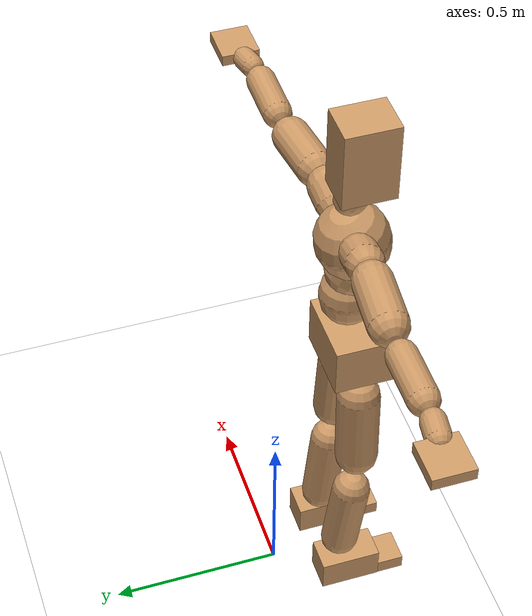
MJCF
<mujoco model="humanoid">
  <option integrator="implicitfast" />

  <visual>
    <global offwidth="1280" offheight="960" />
    <headlight active="1" ambient="0.34 0.34 0.34" diffuse="0.5 0.5 0.5" />
  </visual>

  <default>
    <joint damping="2" stiffness="2" armature="0.01" limited="true" solimplimit="0 .99 .01" />
    <geom condim="1" friction="0.7 0.005 0.0001" solimp=".99 .99 .003" solref="0.015 1" margin="0.001" rgba="0.8 0.6 .4 1" />
    <default class="smplcontact">
      <geom condim="3" friction="1. 0.005 0.0001" solref="0.015 1" solimp="0.98 0.98 0.001" priority="1" />
    </default>
    <default class="stiff_medium">
      <joint stiffness="10" />
    </default>
    <default class="stiff_medium_higher">
      <joint stiffness="50" />
    </default>
    <default class="stiff_high">
      <joint stiffness="100" />
    </default>
  </default>

  <asset>
    <texture type="skybox" builtin="gradient" rgb1="0.99 0.99 0.99" rgb2="0.608 0.828 0.892" width="100" />
    <texture builtin="flat" height="1278" mark="cross" markrgb="1 1 1" name="texgeom" random="0.01" rgb1="0.8 0.6 0.4" rgb2="0.8 0.6 0.4" type="cube" width="127" />
    <texture name="texplane" type="2d" builtin="checker" markrgb="1 1 1" rgb1="0.756 0.772 0.76" rgb2="0.6 0.6 0.6" width="100" height="100" />
    <material name="MatPlane" reflectance="0.5" texture="texplane" texrepeat="1 1" texuniform="true" />
    <material name="geom" texture="texgeom" texuniform="true" />
  </asset>

  <worldbody>
    <light name="tracking_light" pos="0 0 7" dir="0 0 -1" directional="true" cutoff="100" exponent="1" diffuse="1 1 1" specular="0.1 0.1 0.1" mode="trackcom" />
    <camera name="back" pos="0 3 2.4" xyaxes="-1 0 0 0 -1 2" mode="trackcom" />
    <camera name="side" pos="-3 0 2.4" xyaxes="0 -1 0 1 0 2" mode="trackcom" />
    <camera name="front_side" pos="-2.8 -2.8 0.8" xyaxes="0.5 -0.5 0 0.1 0.1 1" mode="trackcom" />
    <geom condim="3" name="floor" pos="0 0 0" rgba="1 1 1 1" size="100 100 .2" type="plane" material="MatPlane" />
    <body name="Pelvis" pos="-0.0018 -0.2233 0.92148" euler="90 0 0">
      <site name="Pelvis" size="0.01" />
      <freejoint name="Pelvis" />
      <geom type="box" pos="-0.0000 -0.0121 -0.0055" size="0.110909 0.0749075 0.0861125" quat="1.0000 0.0000 0.0000 0.0000" density="3165.830099" name="Pelvis" />
      <body name="L_Hip" pos="0.0681934 -0.0896817 -0.00667216">
        <joint name="L_Hip_x" type="hinge" pos="0 0 0" axis="1 0 0" stiffness="10.412654333333332" range="-160.0 22.92" class="stiff_medium" damping="15.524543863969619" armature="0.010287118153182897"/>
        <joint name="L_Hip_y" type="hinge" pos="0 0 0" axis="0 1 0" stiffness="10.422278555555557" range="-70.0 70.0" class="stiff_medium" damping="10.655888094669724" armature="0.010894733860821404"/>
        <joint name="L_Hip_z" type="hinge" pos="0 0 0" axis="0 0 1" stiffness="10.42044522222222" range="-28.65 90.0" class="stiff_medium" damping="10.353110857156846" armature="0.010286211590268381"/>
        <geom type="capsule" density="2040.816327" fromto="0.00677028 -0.07359 -0.00088308 0.0268849 -0.294556 -0.00353232" size="0.0634188" name="L_Hip" />
        <body name="L_Knee" pos="0.0336552 -0.368146 -0.0044154">
          <joint name="L_Knee_x" type="hinge" pos="0 0 0" axis="1 0 0" range="-5.16 171.89" damping="8.345369312456508" armature="0.0103886758927852" stiffness="2.094985133333333"/>
          <joint name="L_Knee_y" type="hinge" pos="0 0 0" axis="0 1 0" range="-4.58 6.88" damping="8.57195590330711" armature="0.011001256568179052" stiffness="2.087216911111111"/>
          <joint name="L_Knee_z" type="hinge" pos="0 0 0" axis="0 0 1" range="-6.88 4.58" damping="8.346953544804537" armature="0.010384220438173776" stiffness="2.0966798222222227"/>
          <geom type="capsule" density="1234.567901" fromto="-0.00264924 -0.0781035 -0.00853644 -0.0106951 -0.312414 -0.034342" size="0.0557879" name="L_Knee" />
          <body name="L_Ankle" pos="-0.0133443 -0.390518 -0.0428784">
            <joint name="L_Ankle_x" type="hinge" pos="0 0 0" axis="1 0 0" range="-45.84 45.84" class="stiff_medium" damping="6.508013473544259" armature="0.010934729542565627" stiffness="10.759357555555557"/>
            <joint name="L_Ankle_y" type="hinge" pos="0 0 0" axis="0 1 0" range="-74.48 22.92" class="stiff_medium" damping="3.2580221576693473" armature="0.010961727288385587" stiffness="10.759363111111108"/>
            <joint name="L_Ankle_z" type="hinge" pos="0 0 0" axis="0 0 1" range="-4.58 4.58" class="stiff_medium" damping="6.5683732479123265" armature="0.011138490870135187" stiffness="10.75936877777778"/>
            <geom type="box" pos="0.022862 -0.0234507 0.023745" size="0.049807 0.0478477 0.087652" quat="1.0000 0.0000 0.0000 0.0000" density="449.071558" name="L_Ankle" class="smplcontact" />
            <body name="L_Toe" pos="0.0259037 -0.054751 0.117057">
              <joint name="L_Toe_x" type="hinge" pos="0 0 0" axis="1 0 0" range="-91.67 22.92" armature="0.011240954448952456" damping="2.199504211543196" stiffness="2.1518718888888886"/>
              <joint name="L_Toe_y" type="hinge" pos="0 0 0" axis="0 1 0" range="-4.58 4.58" armature="0.01136488230829832" damping="2.211595283354591" stiffness="2.151871688888889"/>
              <joint name="L_Toe_z" type="hinge" pos="0 0 0" axis="0 0 1" range="-4.58 4.58" armature="0.011615449781857188" damping="2.2358426220548075" stiffness="2.151872"/>
              <geom type="box" pos="-0.0029436 0.0053966 0.0243338" size="0.0492914 0.020624 0.0511475" quat="1.0000 0.0000 0.0000 0.0000" density="423.206892" name="L_Toe" class="smplcontact" />
            </body>
          </body>
        </body>
      </body>
      <body name="R_Hip" pos="-0.0664272 -0.0887986 -0.00421916">
        <joint name="R_Hip_x" type="hinge" pos="0 0 0" axis="1 0 0" stiffness="10.412654333333332" range="-160.0 22.92" class="stiff_medium" damping="15.524543863969619" armature="0.010287118153182897"/>
        <joint name="R_Hip_y" type="hinge" pos="0 0 0" axis="0 1 0" stiffness="10.422278555555557" range="-70.0 70.0" class="stiff_medium" damping="10.655888094669724" armature="0.010894733860821404"/>
        <joint name="R_Hip_z" type="hinge" pos="0 0 0" axis="0 0 1" stiffness="10.42044522222222" range="-90.0 28.65" class="stiff_medium" damping="10.353110857156846" armature="0.010286211590268381"/>
        <geom type="capsule" density="2040.816327" fromto="-0.00755524 -0.0750618 -0.00176616 -0.0300247 -0.300345 -0.00696652" size="0.0624907" name="R_Hip" />
        <body name="R_Knee" pos="-0.03758 -0.375407 -0.00873268">
          <joint name="R_Knee_x" type="hinge" pos="0 0 0" axis="1 0 0" range="-5.16 171.89" damping="8.345369312456508" armature="0.0103886758927852" stiffness="2.094985133333333"/>
          <joint name="R_Knee_y" type="hinge" pos="0 0 0" axis="0 1 0" range="-6.88 4.58" damping="8.57195590330711" armature="0.011001256568179052" stiffness="2.087216911111111"/>
          <joint name="R_Knee_z" type="hinge" pos="0 0 0" axis="0 0 1" range="-4.58 6.88" damping="8.346953544804537" armature="0.010384220438173776" stiffness="2.0966798222222227"/>
          <geom type="capsule" density="1234.567901" fromto="0.00313984 -0.0782016 -0.0083402 0.0123631 -0.312708 -0.0331646" size="0.0557879" name="R_Knee" />
          <body name="R_Ankle" pos="0.015503 -0.39091 -0.0415048">
            <joint name="R_Ankle_x" type="hinge" pos="0 0 0" axis="1 0 0" range="-45.84 45.84" class="stiff_medium" damping="6.508013473544259" armature="0.010934729542565627" stiffness="10.759357555555557"/>
            <joint name="R_Ankle_y" type="hinge" pos="0 0 0" axis="0 1 0" range="-22.92 74.48" class="stiff_medium" damping="3.2580221576693473" armature="0.010961727288385587" stiffness="10.759363111111108"/>
            <joint name="R_Ankle_z" type="hinge" pos="0 0 0" axis="0 0 1" range="-4.58 4.58" class="stiff_medium" damping="6.5683732479123265" armature="0.011138490870135187" stiffness="10.75936877777778"/>
            <geom type="box" pos="-0.0208014 -0.0170729 0.0251187" size="0.049807 0.0492914 0.0891988" quat="1.0000 0.0000 0.0000 0.0000" density="434.700981" name="R_Ankle" class="smplcontact" />
            <body name="R_Toe" pos="-0.0249225 -0.0471957 0.120982">
              <joint name="R_Toe_x" type="hinge" pos="0 0 0" axis="1 0 0" range="-91.67 22.92" armature="0.011240954448952456" damping="2.199504211543196" stiffness="2.1518718888888886"/>
              <joint name="R_Toe_y" type="hinge" pos="0 0 0" axis="0 1 0" range="-4.58 4.58" armature="0.01136488230829832" damping="2.211595283354591" stiffness="2.151871688888889"/>
              <joint name="R_Toe_z" type="hinge" pos="0 0 0" axis="0 0 1" range="-4.58 4.58" armature="0.011615449781857188" damping="2.2358426220548075" stiffness="2.151872"/>
              <geom type="box" pos="0.00412104 0.0044154 0.0222732" size="0.0493945 0.0222739 0.0508382" quat="1.0000 0.0000 0.0000 0.0000" density="407.384095" name="R_Toe" class="smplcontact" />
            </body>
          </body>
        </body>
      </body>
      <body name="Torso" pos="-0.002475 0.10791 -0.026433">
        <joint name="Torso_x" type="hinge" pos="0 0 0" axis="1 0 0" range="-25.78 57.3" class="stiff_medium" damping="15.757819480099958" armature="0.010419192379794131" stiffness="10.591943777777777"/>
        <joint name="Torso_y" type="hinge" pos="0 0 0" axis="0 1 0" range="-57.3 57.3" class="stiff_high" damping="21.015818931834524" armature="0.010425501872006146" stiffness="105.90968444444447"/>
        <joint name="Torso_z" type="hinge" pos="0 0 0" axis="0 0 1" range="-34.38 34.38" class="stiff_high" damping="21.050867832290393" armature="0.010401613562159311" stiffness="106.50728222222223"/>
        <geom type="capsule" density="2040.816327" fromto="0.002475 0.060192 0.000495 0.00297 0.073557 0.000594" size="0.0797838" name="Torso" />
        <body name="Spine" pos="0.005445 0.133848 0.001089">
          <joint name="Spine_x" type="hinge" pos="0 0 0" axis="1 0 0" stiffness="10.53843377777778" range="-25.78 57.3" class="stiff_medium" damping="15.659494382316332" armature="0.010341817789402767"/>
          <joint name="Spine_y" type="hinge" pos="0 0 0" axis="0 1 0" stiffness="10.550845333333331" range="-57.3 57.3" class="stiff_high" damping="8.386457705683542" armature="0.010415734271045878"/>
          <joint name="Spine_z" type="hinge" pos="0 0 0" axis="0 0 1" stiffness="21.028502666666668" range="-34.38 34.38" class="stiff_high" damping="12.520434075087067" armature="0.010353755983902129"/>
          <geom type="capsule" density="2040.816327" fromto="0.000693 0.023562 0.011286 0.000792 0.028809 0.01386" size="0.0783313" name="Spine" />
          <body name="Chest" pos="0.001485 0.052371 0.025146">
            <joint name="Chest_x" type="hinge" pos="0 0 0" axis="1 0 0" stiffness="10.455503555555556" range="-25.78 57.3" class="stiff_medium" damping="15.572717849301108" armature="0.01030863963123393"/>
            <joint name="Chest_y" type="hinge" pos="0 0 0" axis="0 1 0" stiffness="10.482216" range="-57.3 57.3" class="stiff_high" damping="8.355950644749344" armature="0.010407793181787459"/>
            <joint name="Chest_z" type="hinge" pos="0 0 0" axis="0 0 1" stiffness="20.93890977777778" range="-34.38 34.38" class="stiff_high" damping="12.486883035785915" armature="0.010342404643117024"/>
            <geom type="capsule" density="2040.816327" fromto="-0.000891 0.067518 -0.017127 -0.00099 0.082467 -0.020988" size="0.103958" name="Chest" />
            <body name="Neck" pos="-0.002772 0.211761 -0.042471">
              <joint name="Neck_x" type="hinge" pos="0 0 0" axis="1 0 0" range="-28.65 57.3" class="stiff_medium_higher" damping="10.233361079329883" armature="0.01022903931793403" stiffness="51.18842333333333"/>
              <joint name="Neck_y" type="hinge" pos="0 0 0" axis="0 1 0" range="-40.11 40.11" class="stiff_medium_higher" damping="10.278297257390376" armature="0.010327489944245408" stiffness="51.14669444444445"/>
              <joint name="Neck_z" type="hinge" pos="0 0 0" axis="0 0 1" range="-40.11 40.11" class="stiff_medium_higher" damping="10.219481443056981" armature="0.010226337927646947" stiffness="51.063147777777786"/>
              <geom type="capsule" density="1000" fromto="0.00099 0.01287 0.010197 0.004059 0.05148 0.040689" size="0.045235" name="Neck" />
              <body name="Head" pos="0.0052 0.065 0.0513">
                <joint name="Head_x" type="hinge" pos="0 0 0" axis="1 0 0" range="-28.65 57.3" class="stiff_medium_higher" damping="2.043814107430828" armature="0.010248032926111468" stiffness="50.95094999999999"/>
                <joint name="Head_y" type="hinge" pos="0 0 0" axis="0 1 0" range="-40.11 40.11" class="stiff_medium_higher" damping="2.050288255147789" armature="0.010313060721137106" stiffness="50.95094999999999"/>
                <joint name="Head_z" type="hinge" pos="0 0 0" axis="0 0 1" range="-40.11 40.11" class="stiff_medium_higher" damping="2.0434930849024395" armature="0.010244813855394478" stiffness="50.95094999999999"/>
                <geom type="box" pos="-0.0042 0.0876 -0.0116" size="0.0609818 0.116127 0.0764788" quat="1.0000 0.0000 0.0000 0.0000" density="1018.069894" name="Head" />
                <geom type="capsule" name="nose" size="0.020126 0.010063" pos="0 0.07 0.05" quat="1 0 0 0" mass="0" contype="0" conaffinity="0" />
              </body>
            </body>
            <body name="L_Thorax" pos="0.077618 0.119874 -0.0335885">
              <joint name="L_Thorax_x" type="hinge" pos="0 0 0" axis="1 0 0" range="-10.89 4.58" class="stiff_medium_higher" damping="21.30663625130984" armature="0.010802232673454813" stiffness="52.53228222222223"/>
              <joint name="L_Thorax_y" type="hinge" pos="0 0 0" axis="0 1 0" range="-28.65 17.19" class="stiff_medium_higher" damping="20.873894298894207" armature="0.010380443969999565" stiffness="52.46878944444444"/>
              <joint name="L_Thorax_z" type="hinge" pos="0 0 0" axis="0 0 1" range="-31.51 40.11" class="stiff_medium_higher" damping="20.873726466489547" armature="0.010380062947500686" stiffness="52.46987166666667"/>
              <geom type="capsule" density="1000" fromto="0.017927 0.0060085 -0.001773 0.071708 0.024034 -0.0069935" size="0.0537255" name="L_Thorax" />
              <body name="L_Shoulder" pos="0.089635 0.0300425 -0.0087665">
                <joint name="L_Shoulder_x" type="hinge" pos="0 0 0" axis="1 0 0" range="-97.4 97.4" class="stiff_medium" damping="6.442079071823354" armature="0.010967129877215905" stiffness="10.511304444444445"/>
                <joint name="L_Shoulder_y" type="hinge" pos="0 0 0" axis="0 1 0" range="-108.86 80.21" class="stiff_medium" damping="6.269318091719168" armature="0.010395210118684738" stiffness="10.502793777777779"/>
                <joint name="L_Shoulder_z" type="hinge" pos="0 0 0" axis="0 0 1" range="-97.4 85.94" class="stiff_medium" damping="6.268037894726984" armature="0.01039471416027136" stiffness="10.499005777777777"/>
                <geom type="capsule" density="1000" fromto="0.0511215 -0.002561 -0.0054175 0.204585 -0.010047 -0.02167" size="0.053313" name="L_Shoulder" />
                <body name="L_Elbow" pos="0.255706 -0.012608 -0.0270875">
                  <joint name="L_Elbow_x" type="hinge" pos="0 0 0" axis="1 0 0" range="-17.19 4.58" damping="5.442730353115991" armature="0.011231565656501415" stiffness="2.1100042222222224"/>
                  <joint name="L_Elbow_y" type="hinge" pos="0 0 0" axis="0 1 0" range="-180.0 17.19" damping="5.254260420557321" armature="0.010467208733362625" stiffness="2.1099992"/>
                  <joint name="L_Elbow_z" type="hinge" pos="0 0 0" axis="0 0 1" range="-100.84 4.58" damping="5.2538553420233765" armature="0.010464606471950135" stiffness="2.110198488888889"/>
                  <geom type="capsule" density="1000" fromto="0.049053 0.001773 -0.000197 0.196409 0.007092 -0.0008865" size="0.0417636" name="L_Elbow" />
                  <body name="L_Wrist" pos="0.245462 0.008865 -0.001182">
                    <joint name="L_Wrist_x" type="hinge" pos="0 0 0" axis="1 0 0" range="-180.0 22.92" armature="0.011311321192343243" damping="2.2018199513810273" stiffness="2.142990644444444"/>
                    <joint name="L_Wrist_y" type="hinge" pos="0 0 0" axis="0 1 0" range="-17.19 17.19" armature="0.010714005431941225" damping="2.14142853694116" stiffness="2.140056866666667"/>
                    <joint name="L_Wrist_z" type="hinge" pos="0 0 0" axis="0 0 1" range="-22.92 22.92" armature="0.010680627597435148" damping="2.1386063191991376" stiffness="2.14109"/>
                    <geom type="capsule" density="1000" fromto="0.016548 -0.001576 -0.002955 0.066192 -0.0064025 -0.01182" size="0.0327922" name="L_Wrist" class="smplcontact" />
                    <body name="L_Hand" pos="0.08274 -0.008077 -0.0146765">
                      <joint name="L_Hand_x" type="hinge" pos="0 0 0" axis="1 0 0" range="-17.19 17.19" armature="0.011615961890235752" damping="2.240219499732389" stiffness="2.16021"/>
                      <joint name="L_Hand_y" type="hinge" pos="0 0 0" axis="0 1 0" range="-51.57 51.57" armature="0.011122296625522261" damping="2.192099285772405" stiffness="2.16021"/>
                      <joint name="L_Hand_z" type="hinge" pos="0 0 0" axis="0 0 1" range="-91.67 91.67" armature="0.010990705352279194" damping="2.1790930043964183" stiffness="2.16021"/>
                      <geom type="box" pos="0.0485605 0.000985 -0.005713" size="0.0603252 0.016293 0.0554786" quat="1.0000 0.0000 0.0000 0.0000" density="400.552564" name="L_Hand" class="smplcontact" />
                    </body>
                  </body>
                </body>
              </body>
            </body>
            <body name="R_Thorax" pos="-0.080573 0.117018 -0.038021">
              <joint name="R_Thorax_x" type="hinge" pos="0 0 0" axis="1 0 0" range="-10.89 4.58" class="stiff_medium_higher" damping="21.30663625130984" armature="0.010802232673454813" stiffness="52.53228222222223"/>
              <joint name="R_Thorax_y" type="hinge" pos="0 0 0" axis="0 1 0" range="-17.19 28.65" class="stiff_medium_higher" damping="20.873894298894207" armature="0.010380443969999565" stiffness="52.46878944444444"/>
              <joint name="R_Thorax_z" type="hinge" pos="0 0 0" axis="0 0 1" range="-40.11 31.51" class="stiff_medium_higher" damping="20.873726466489547" armature="0.010380062947500686" stiffness="52.46987166666667"/>
              <geom type="capsule" density="1000" fromto="-0.018912 0.0064025 -0.001773 -0.075648 0.02561 -0.0071905" size="0.0526943" name="R_Thorax" />
              <body name="R_Shoulder" pos="-0.09456 0.032111 -0.0089635">
                <joint name="R_Shoulder_x" type="hinge" pos="0 0 0" axis="1 0 0" range="-97.4 97.4" class="stiff_medium" damping="6.442079071823354" armature="0.010967129877215905" stiffness="10.511304444444445"/>
                <joint name="R_Shoulder_y" type="hinge" pos="0 0 0" axis="0 1 0" range="-80.21 108.86" class="stiff_medium" damping="6.269318091719168" armature="0.010395210118684738" stiffness="10.502793777777779"/>
                <joint name="R_Shoulder_z" type="hinge" pos="0 0 0" axis="0 0 1" range="-85.94 97.4" class="stiff_medium" damping="6.268037894726984" armature="0.01039471416027136" stiffness="10.499005777777777"/>
                <geom type="capsule" density="1000" fromto="-0.0499395 -0.0026595 -0.0042355 -0.199955 -0.0105395 -0.0168435" size="0.0547567" name="R_Shoulder" />
                <body name="R_Elbow" pos="-0.249894 -0.0131005 -0.021079">
                  <joint name="R_Elbow_x" type="hinge" pos="0 0 0" axis="1 0 0" range="-17.19 4.58" damping="5.442730353115991" armature="0.011231565656501415" stiffness="2.1100042222222224"/>
                  <joint name="R_Elbow_y" type="hinge" pos="0 0 0" axis="0 1 0" range="-17.19 180.0" damping="5.254260420557321" armature="0.010467208733362625" stiffness="2.1099992"/>
                  <joint name="R_Elbow_z" type="hinge" pos="0 0 0" axis="0 0 1" range="-4.58 100.84" damping="5.2538553420233765" armature="0.010464606471950135" stiffness="2.110198488888889"/>
                  <geom type="capsule" density="1000" fromto="-0.0503335 0.001576 -0.0010835 -0.201137 0.006107 -0.004334" size="0.042073" name="R_Elbow" />
                  <body name="R_Wrist" pos="-0.251471 0.007683 -0.005516">
                    <joint name="R_Wrist_x" type="hinge" pos="0 0 0" axis="1 0 0" range="-180.0 22.92" armature="0.011311321192343243" damping="2.2018199513810273" stiffness="2.142990644444444"/>
                    <joint name="R_Wrist_y" type="hinge" pos="0 0 0" axis="0 1 0" range="-17.19 17.19" armature="0.010714005431941225" damping="2.14142853694116" stiffness="2.140056866666667"/>
                    <joint name="R_Wrist_z" type="hinge" pos="0 0 0" axis="0 0 1" range="-22.92 22.92" armature="0.010680627597435148" damping="2.1386063191991376" stiffness="2.14109"/>
                    <geom type="capsule" density="1000" fromto="-0.0166465 -0.001182 -0.0020685 -0.0666845 -0.0048265 -0.0081755" size="0.0336171" name="R_Wrist" class="smplcontact" />
                    <body name="R_Hand" pos="-0.083331 -0.0060085 -0.0101455">
                      <joint name="R_Hand_x" type="hinge" pos="0 0 0" axis="1 0 0" range="-17.19 17.19" armature="0.011615961890235752" damping="2.240219499732389" stiffness="2.16021"/>
                      <joint name="R_Hand_y" type="hinge" pos="0 0 0" axis="0 1 0" range="-51.57 51.57" armature="0.011122296625522261" damping="2.192099285772405" stiffness="2.16021"/>
                      <joint name="R_Hand_z" type="hinge" pos="0 0 0" axis="0 0 1" range="-91.67 91.67" armature="0.010990705352279194" damping="2.1790930043964183" stiffness="2.16021"/>
                      <geom type="box" pos="-0.045507 -0.0008865 -0.0077815" size="0.0586753 0.0169117 0.0563035" quat="1.0000 0.0000 0.0000 0.0000" density="403.679611" name="R_Hand" class="smplcontact" />
                    </body>
                  </body>
                </body>
              </body>
            </body>
          </body>
        </body>
      </body>
    </body>
  </worldbody>
  <actuator>
    <general name="L_Hip_x" joint="L_Hip_x" biastype="affine" gainprm="299.18686370199293" biasprm="-224.21023002552585 -187.427778 -2.069939181862616" ctrllimited="true" ctrlrange="-1 1" forcerange="-374.855556 374.855556" />
    <general name="L_Hip_y" joint="L_Hip_y" biastype="affine" gainprm="229.19787620659847" biasprm="0.0 -187.60101400000002 -2.1311776189339446" ctrllimited="true" ctrlrange="-1 1" forcerange="-375.20202800000004 375.20202800000004" />
    <general name="L_Hip_z" joint="L_Hip_z" biastype="affine" gainprm="194.21103133799355" biasprm="100.42011607742016 -187.56801399999998 -2.0706221714313693" ctrllimited="true" ctrlrange="-1 1" forcerange="-375.13602799999995 375.13602799999995" />
    <general name="L_Knee_x" joint="L_Knee_x" biastype="affine" gainprm="291.31762313730087" biasprm="274.3371211843105 -188.54866199999998 -2.086342328114127" ctrllimited="true" ctrlrange="-1 1" forcerange="-377.09732399999996 377.09732399999996" />
    <general name="L_Knee_y" joint="L_Knee_y" biastype="affine" gainprm="18.78633592574181" biasprm="3.7703815557771523 -187.849522 -2.1429889758267775" ctrllimited="true" ctrlrange="-1 1" forcerange="-375.699044 375.699044" />
    <general name="L_Knee_z" joint="L_Knee_z" biastype="affine" gainprm="18.87150839920272" biasprm="-3.7874755076933906 -188.70118400000004 -2.086738386201134" ctrllimited="true" ctrlrange="-1 1" forcerange="-377.4023680000001 377.4023680000001" />
    <general name="L_Ankle_x" joint="L_Ankle_x" biastype="affine" gainprm="77.47308075469108" biasprm="0.0 -96.83421800000002 -2.169337824514753" ctrllimited="true" ctrlrange="-1 1" forcerange="-193.66843600000004 193.66843600000004" />
    <general name="L_Ankle_y" joint="L_Ankle_y" biastype="affine" gainprm="82.30674042096305" biasprm="-43.5701800421443 -96.83426799999998 -2.172014771779565" ctrllimited="true" ctrlrange="-1 1" forcerange="-193.66853599999996 193.66853599999996" />
    <general name="L_Ankle_z" joint="L_Ankle_z" biastype="affine" gainprm="7.740555845282384" biasprm="0.0 -96.83431900000002 -2.189457749304109" ctrllimited="true" ctrlrange="-1 1" forcerange="-193.66863800000004 193.66863800000004" />
    <general name="L_Toe_x" joint="L_Toe_x" biastype="affine" gainprm="77.46633405077523" biasprm="-46.4770963084981 -77.46738799999999 -0.8798016846172785" ctrllimited="true" ctrlrange="-1 1" forcerange="-154.93477599999997 154.93477599999997" />
    <general name="L_Toe_y" joint="L_Toe_y" biastype="affine" gainprm="6.192438728981574" biasprm="0.0 -77.4673808 -0.8846381133418364" ctrllimited="true" ctrlrange="-1 1" forcerange="-154.9347616 154.9347616" />
    <general name="L_Toe_z" joint="L_Toe_z" biastype="affine" gainprm="6.192439624265667" biasprm="0.0 -77.467392 -0.8943370488219231" ctrllimited="true" ctrlrange="-1 1" forcerange="-154.934784 154.934784" />
    <general name="R_Hip_x" joint="R_Hip_x" biastype="affine" gainprm="299.18686370199293" biasprm="-224.21023002552585 -187.427778 -2.069939181862616" ctrllimited="true" ctrlrange="-1 1" forcerange="-374.855556 374.855556" />
    <general name="R_Hip_y" joint="R_Hip_y" biastype="affine" gainprm="229.19787620659847" biasprm="0.0 -187.60101400000002 -2.1311776189339446" ctrllimited="true" ctrlrange="-1 1" forcerange="-375.20202800000004 375.20202800000004" />
    <general name="R_Hip_z" joint="R_Hip_z" biastype="affine" gainprm="194.21103133799355" biasprm="-100.42011607742016 -187.56801399999998 -2.0706221714313693" ctrllimited="true" ctrlrange="-1 1" forcerange="-375.13602799999995 375.13602799999995" />
    <general name="R_Knee_x" joint="R_Knee_x" biastype="affine" gainprm="291.31762313730087" biasprm="274.3371211843105 -188.54866199999998 -2.086342328114127" ctrllimited="true" ctrlrange="-1 1" forcerange="-377.09732399999996 377.09732399999996" />
    <general name="R_Knee_y" joint="R_Knee_y" biastype="affine" gainprm="18.78633592574181" biasprm="-3.7703815557771523 -187.849522 -2.1429889758267775" ctrllimited="true" ctrlrange="-1 1" forcerange="-375.699044 375.699044" />
    <general name="R_Knee_z" joint="R_Knee_z" biastype="affine" gainprm="18.87150839920272" biasprm="3.7874755076933906 -188.70118400000004 -2.086738386201134" ctrllimited="true" ctrlrange="-1 1" forcerange="-377.4023680000001 377.4023680000001" />
    <general name="R_Ankle_x" joint="R_Ankle_x" biastype="affine" gainprm="77.47308075469108" biasprm="0.0 -96.83421800000002 -2.169337824514753" ctrllimited="true" ctrlrange="-1 1" forcerange="-193.66843600000004 193.66843600000004" />
    <general name="R_Ankle_y" joint="R_Ankle_y" biastype="affine" gainprm="82.30674042096305" biasprm="43.5701800421443 -96.83426799999998 -2.172014771779565" ctrllimited="true" ctrlrange="-1 1" forcerange="-193.66853599999996 193.66853599999996" />
    <general name="R_Ankle_z" joint="R_Ankle_z" biastype="affine" gainprm="7.740555845282384" biasprm="0.0 -96.83431900000002 -2.189457749304109" ctrllimited="true" ctrlrange="-1 1" forcerange="-193.66863800000004 193.66863800000004" />
    <general name="R_Toe_x" joint="R_Toe_x" biastype="affine" gainprm="77.46633405077523" biasprm="-46.4770963084981 -77.46738799999999 -0.8798016846172785" ctrllimited="true" ctrlrange="-1 1" forcerange="-154.93477599999997 154.93477599999997" />
    <general name="R_Toe_y" joint="R_Toe_y" biastype="affine" gainprm="6.192438728981574" biasprm="0.0 -77.4673808 -0.8846381133418364" ctrllimited="true" ctrlrange="-1 1" forcerange="-154.9347616 154.9347616" />
    <general name="R_Toe_z" joint="R_Toe_z" biastype="affine" gainprm="6.192439624265667" biasprm="0.0 -77.467392 -0.8943370488219231" ctrllimited="true" ctrlrange="-1 1" forcerange="-154.934784 154.934784" />
    <general name="Torso_x" joint="Torso_x" biastype="affine" gainprm="184.30230565729943" biasprm="69.92307022530184 -254.20665066666663 -4.202085194693322" ctrllimited="true" ctrlrange="-1 1" forcerange="-381.30997599999995 381.30997599999995" />
    <general name="Torso_y" joint="Torso_y" biastype="affine" gainprm="254.20196615833544" biasprm="0.0 -254.1832426666667 -4.203163786366905" ctrllimited="true" ctrlrange="-1 1" forcerange="-381.2748640000001 381.2748640000001" />
    <general name="Torso_z" joint="Torso_z" biastype="affine" gainprm="153.38178388363514" biasprm="0.0 -255.61747733333337 -4.210173566458079" ctrllimited="true" ctrlrange="-1 1" forcerange="-383.426216 383.426216" />
    <general name="Spine_x" joint="Spine_x" biastype="affine" gainprm="183.37121910863286" biasprm="69.56982217506146 -252.92241066666674 -4.175865168617689" ctrllimited="true" ctrlrange="-1 1" forcerange="-379.3836160000001 379.3836160000001" />
    <general name="Spine_y" joint="Spine_y" biastype="affine" gainprm="253.23894055908679" biasprm="0.0 -253.22028799999995 -4.193228852841771" ctrllimited="true" ctrlrange="-1 1" forcerange="-379.830432 379.830432" />
    <general name="Spine_z" joint="Spine_z" biastype="affine" gainprm="151.41637191931605" biasprm="0.0 -252.342032 -4.173478025029023" ctrllimited="true" ctrlrange="-1 1" forcerange="-378.51304799999997 378.51304799999997" />
    <general name="Chest_x" joint="Chest_x" biastype="affine" gainprm="181.92821379394314" biasprm="69.02235554628173 -250.93208533333336 -4.152724759813629" ctrllimited="true" ctrlrange="-1 1" forcerange="-376.39812800000004 376.39812800000004" />
    <general name="Chest_y" joint="Chest_y" biastype="affine" gainprm="251.59171523111218" biasprm="0.0 -251.573184 -4.177975322374672" ctrllimited="true" ctrlrange="-1 1" forcerange="-377.359776 377.359776" />
    <general name="Chest_z" joint="Chest_z" biastype="affine" gainprm="150.77125560264983" biasprm="0.0 -251.26691733333334 -4.162294345261972" ctrllimited="true" ctrlrange="-1 1" forcerange="-376.900376 376.900376" />
    <general name="Neck_x" joint="Neck_x" biastype="affine" gainprm="27.64378472969994" biasprm="9.214594909899981 -36.8556648 -0.8186688863463907" ctrllimited="true" ctrlrange="-1 1" forcerange="-73.7113296 73.7113296" />
    <general name="Neck_y" joint="Neck_y" biastype="affine" gainprm="25.779832838520683" biasprm="0.0 -36.82562000000001 -0.8222637805912302" ctrllimited="true" ctrlrange="-1 1" forcerange="-73.65124000000002 73.65124000000002" />
    <general name="Neck_z" joint="Neck_z" biastype="affine" gainprm="25.737722216822114" biasprm="0.0 -36.76546640000001 -0.8175585154445586" ctrllimited="true" ctrlrange="-1 1" forcerange="-73.53093280000002 73.53093280000002" />
    <general name="Head_x" joint="Head_x" biastype="affine" gainprm="18.343693122458028" biasprm="6.1145643741526765 -24.456455999999996 -0.8175256429723312" ctrllimited="true" ctrlrange="-1 1" forcerange="-48.91291199999999 48.91291199999999" />
    <general name="Head_y" joint="Head_y" biastype="affine" gainprm="17.120780247627494" biasprm="0.0 -24.456455999999996 -0.8201153020591155" ctrllimited="true" ctrlrange="-1 1" forcerange="-48.91291199999999 48.91291199999999" />
    <general name="Head_z" joint="Head_z" biastype="affine" gainprm="17.120780247627494" biasprm="0.0 -24.456455999999996 -0.8173972339609759" ctrllimited="true" ctrlrange="-1 1" forcerange="-48.91291199999999 48.91291199999999" />
    <general name="L_Thorax_x" joint="L_Thorax_x" biastype="affine" gainprm="17.02061295720157" biasprm="-6.942473675497218 -126.07747733333335 -1.7045309001047872" ctrllimited="true" ctrlrange="-1 1" forcerange="-252.1549546666667 252.1549546666667" />
    <general name="L_Thorax_y" joint="L_Thorax_y" biastype="affine" gainprm="50.37374819380883" biasprm="-12.593437048452207 -125.92509466666667 -1.6699115439115368" ctrllimited="true" ctrlrange="-1 1" forcerange="-251.85018933333333 251.85018933333333" />
    <general name="L_Thorax_z" joint="L_Thorax_z" biastype="affine" gainprm="78.70511037362455" biasprm="9.450767232800489 -125.92769200000001 -1.6698981173191638" ctrllimited="true" ctrlrange="-1 1" forcerange="-251.85538400000002 251.85538400000002" />
    <general name="L_Shoulder_x" joint="L_Shoulder_x" biastype="affine" gainprm="85.76975643981945" biasprm="0.0 -50.454261333333335 -1.7178877524862277" ctrllimited="true" ctrlrange="-1 1" forcerange="-100.90852266666667 100.90852266666667" />
    <general name="L_Shoulder_y" joint="L_Shoulder_y" biastype="affine" gainprm="83.17945523136633" biasprm="-12.60428091383427 -50.41341013333334 -1.6718181577917783" ctrllimited="true" ctrlrange="-1 1" forcerange="-100.82682026666669 100.82682026666669" />
    <general name="L_Shoulder_z" joint="L_Shoulder_z" biastype="affine" gainprm="80.62950823908146" biasprm="-5.0398939915996275 -50.39522773333333 -1.671476771927196" ctrllimited="true" ctrlrange="-1 1" forcerange="-100.79045546666666 100.79045546666666" />
    <general name="L_Elbow_x" joint="L_Elbow_x" biastype="affine" gainprm="14.430840483306648" biasprm="-8.358883715870322 -75.96015200000001 -0.8708368564985586" ctrllimited="true" ctrlrange="-1 1" forcerange="-151.92030400000002 151.92030400000002" />
    <general name="L_Elbow_y" joint="L_Elbow_y" biastype="affine" gainprm="130.7124787219969" biasprm="-107.92280876681535 -75.9599712 -0.8406816672891714" ctrllimited="true" ctrlrange="-1 1" forcerange="-151.9199424 151.9199424" />
    <general name="L_Elbow_z" joint="L_Elbow_z" biastype="affine" gainprm="69.88696686920397" biasprm="-63.81445106080037 -75.96714560000001 -0.8406168547237404" ctrllimited="true" ctrlrange="-1 1" forcerange="-151.93429120000002 151.93429120000002" />
    <general name="L_Wrist_x" joint="L_Wrist_x" biastype="affine" gainprm="22.768989196038927" biasprm="-17.625432795751006 -12.857943866666666 -0.880727980552411" ctrllimited="true" ctrlrange="-1 1" forcerange="-25.715887733333332 25.715887733333332" />
    <general name="L_Wrist_y" joint="L_Wrist_y" biastype="affine" gainprm="3.8523861112248574" biasprm="0.0 -12.840341200000001 -0.856571414776464" ctrllimited="true" ctrlrange="-1 1" forcerange="-25.680682400000002 25.680682400000002" />
    <general name="L_Wrist_z" joint="L_Wrist_z" biastype="affine" gainprm="5.138994517611373" biasprm="0.0 -12.846540000000001 -0.8554425276796551" ctrllimited="true" ctrlrange="-1 1" forcerange="-25.693080000000002 25.693080000000002" />
    <general name="L_Hand_x" joint="L_Hand_x" biastype="affine" gainprm="3.888664423339023" biasprm="0.0 -12.961260000000001 -0.8960877998929556" ctrllimited="true" ctrlrange="-1 1" forcerange="-25.922520000000002 25.922520000000002" />
    <general name="L_Hand_y" joint="L_Hand_y" biastype="affine" gainprm="11.665993270017065" biasprm="0.0 -12.961260000000001 -0.8768397143089621" ctrllimited="true" ctrlrange="-1 1" forcerange="-25.922520000000002 25.922520000000002" />
    <general name="L_Hand_z" joint="L_Hand_z" biastype="affine" gainprm="20.73728142451938" biasprm="0.0 -12.961260000000001 -0.8716372017585674" ctrllimited="true" ctrlrange="-1 1" forcerange="-25.922520000000002 25.922520000000002" />
    <general name="R_Thorax_x" joint="R_Thorax_x" biastype="affine" gainprm="17.02061295720157" biasprm="-6.942473675497218 -126.07747733333335 -1.7045309001047872" ctrllimited="true" ctrlrange="-1 1" forcerange="-252.1549546666667 252.1549546666667" />
    <general name="R_Thorax_y" joint="R_Thorax_y" biastype="affine" gainprm="50.37374819380883" biasprm="12.5934370484522 -125.92509466666667 -1.6699115439115368" ctrllimited="true" ctrlrange="-1 1" forcerange="-251.85018933333333 251.85018933333333" />
    <general name="R_Thorax_z" joint="R_Thorax_z" biastype="affine" gainprm="78.70511037362455" biasprm="-9.450767232800489 -125.92769200000001 -1.6698981173191638" ctrllimited="true" ctrlrange="-1 1" forcerange="-251.85538400000002 251.85538400000002" />
    <general name="R_Shoulder_x" joint="R_Shoulder_x" biastype="affine" gainprm="85.76975643981945" biasprm="0.0 -50.454261333333335 -1.7178877524862277" ctrllimited="true" ctrlrange="-1 1" forcerange="-100.90852266666667 100.90852266666667" />
    <general name="R_Shoulder_y" joint="R_Shoulder_y" biastype="affine" gainprm="83.17945523136633" biasprm="12.60428091383427 -50.41341013333334 -1.6718181577917783" ctrllimited="true" ctrlrange="-1 1" forcerange="-100.82682026666669 100.82682026666669" />
    <general name="R_Shoulder_z" joint="R_Shoulder_z" biastype="affine" gainprm="80.62950823908146" biasprm="5.039893991599616 -50.39522773333333 -1.671476771927196" ctrllimited="true" ctrlrange="-1 1" forcerange="-100.79045546666666 100.79045546666666" />
    <general name="R_Elbow_x" joint="R_Elbow_x" biastype="affine" gainprm="14.430840483306648" biasprm="-8.358883715870322 -75.96015200000001 -0.8708368564985586" ctrllimited="true" ctrlrange="-1 1" forcerange="-151.92030400000002 151.92030400000002" />
    <general name="R_Elbow_y" joint="R_Elbow_y" biastype="affine" gainprm="130.7124787219969" biasprm="107.92280876681535 -75.9599712 -0.8406816672891714" ctrllimited="true" ctrlrange="-1 1" forcerange="-151.9199424 151.9199424" />
    <general name="R_Elbow_z" joint="R_Elbow_z" biastype="affine" gainprm="69.88696686920397" biasprm="63.814451060800366 -75.96714560000001 -0.8406168547237404" ctrllimited="true" ctrlrange="-1 1" forcerange="-151.93429120000002 151.93429120000002" />
    <general name="R_Wrist_x" joint="R_Wrist_x" biastype="affine" gainprm="22.768989196038927" biasprm="-17.625432795751006 -12.857943866666666 -0.880727980552411" ctrllimited="true" ctrlrange="-1 1" forcerange="-25.715887733333332 25.715887733333332" />
    <general name="R_Wrist_y" joint="R_Wrist_y" biastype="affine" gainprm="3.8523861112248574" biasprm="0.0 -12.840341200000001 -0.856571414776464" ctrllimited="true" ctrlrange="-1 1" forcerange="-25.680682400000002 25.680682400000002" />
    <general name="R_Wrist_z" joint="R_Wrist_z" biastype="affine" gainprm="5.138994517611373" biasprm="0.0 -12.846540000000001 -0.8554425276796551" ctrllimited="true" ctrlrange="-1 1" forcerange="-25.693080000000002 25.693080000000002" />
    <general name="R_Hand_x" joint="R_Hand_x" biastype="affine" gainprm="3.888664423339023" biasprm="0.0 -12.961260000000001 -0.8960877998929556" ctrllimited="true" ctrlrange="-1 1" forcerange="-25.922520000000002 25.922520000000002" />
    <general name="R_Hand_y" joint="R_Hand_y" biastype="affine" gainprm="11.665993270017065" biasprm="0.0 -12.961260000000001 -0.8768397143089621" ctrllimited="true" ctrlrange="-1 1" forcerange="-25.922520000000002 25.922520000000002" />
    <general name="R_Hand_z" joint="R_Hand_z" biastype="affine" gainprm="20.73728142451938" biasprm="0.0 -12.961260000000001 -0.8716372017585674" ctrllimited="true" ctrlrange="-1 1" forcerange="-25.922520000000002 25.922520000000002" />
  </actuator>
  <contact>
    <exclude body1="Torso" body2="Chest" />
    <exclude body1="Head" body2="Chest" />
    <exclude body1="R_Knee" body2="R_Toe" />
    <exclude body1="R_Knee" body2="L_Ankle" />
    <exclude body1="R_Knee" body2="L_Toe" />
    <exclude body1="L_Knee" body2="L_Toe" />
    <exclude body1="L_Knee" body2="R_Ankle" />
    <exclude body1="L_Knee" body2="R_Toe" />
    <exclude body1="L_Shoulder" body2="Chest" />
    <exclude body1="R_Shoulder" body2="Chest" />
  </contact>
  <sensor>
    <framelinvel name="sensor_Pelvis_framelinvel" objtype="xbody" objname="Pelvis" />
    <framelinvel name="sensor_L_Hip_framelinvel" objtype="xbody" objname="L_Hip" />
    <framelinvel name="sensor_L_Knee_framelinvel" objtype="xbody" objname="L_Knee" />
    <framelinvel name="sensor_L_Ankle_framelinvel" objtype="xbody" objname="L_Ankle" />
    <framelinvel name="sensor_L_Toe_framelinvel" objtype="xbody" objname="L_Toe" />
    <framelinvel name="sensor_R_Hip_framelinvel" objtype="xbody" objname="R_Hip" />
    <framelinvel name="sensor_R_Knee_framelinvel" objtype="xbody" objname="R_Knee" />
    <framelinvel name="sensor_R_Ankle_framelinvel" objtype="xbody" objname="R_Ankle" />
    <framelinvel name="sensor_R_Toe_framelinvel" objtype="xbody" objname="R_Toe" />
    <framelinvel name="sensor_Torso_framelinvel" objtype="xbody" objname="Torso" />
    <framelinvel name="sensor_Spine_framelinvel" objtype="xbody" objname="Spine" />
    <framelinvel name="sensor_Chest_framelinvel" objtype="xbody" objname="Chest" />
    <framelinvel name="sensor_Neck_framelinvel" objtype="xbody" objname="Neck" />
    <framelinvel name="sensor_Head_framelinvel" objtype="xbody" objname="Head" />
    <framelinvel name="sensor_L_Thorax_framelinvel" objtype="xbody" objname="L_Thorax" />
    <framelinvel name="sensor_L_Shoulder_framelinvel" objtype="xbody" objname="L_Shoulder" />
    <framelinvel name="sensor_L_Elbow_framelinvel" objtype="xbody" objname="L_Elbow" />
    <framelinvel name="sensor_L_Wrist_framelinvel" objtype="xbody" objname="L_Wrist" />
    <framelinvel name="sensor_L_Hand_framelinvel" objtype="xbody" objname="L_Hand" />
    <framelinvel name="sensor_R_Thorax_framelinvel" objtype="xbody" objname="R_Thorax" />
    <framelinvel name="sensor_R_Shoulder_framelinvel" objtype="xbody" objname="R_Shoulder" />
    <framelinvel name="sensor_R_Elbow_framelinvel" objtype="xbody" objname="R_Elbow" />
    <framelinvel name="sensor_R_Wrist_framelinvel" objtype="xbody" objname="R_Wrist" />
    <framelinvel name="sensor_R_Hand_framelinvel" objtype="xbody" objname="R_Hand" />
    <frameangvel name="sensor_Pelvis_frameangvel" objtype="xbody" objname="Pelvis" />
    <frameangvel name="sensor_L_Hip_frameangvel" objtype="xbody" objname="L_Hip" />
    <frameangvel name="sensor_L_Knee_frameangvel" objtype="xbody" objname="L_Knee" />
    <frameangvel name="sensor_L_Ankle_frameangvel" objtype="xbody" objname="L_Ankle" />
    <frameangvel name="sensor_L_Toe_frameangvel" objtype="xbody" objname="L_Toe" />
    <frameangvel name="sensor_R_Hip_frameangvel" objtype="xbody" objname="R_Hip" />
    <frameangvel name="sensor_R_Knee_frameangvel" objtype="xbody" objname="R_Knee" />
    <frameangvel name="sensor_R_Ankle_frameangvel" objtype="xbody" objname="R_Ankle" />
    <frameangvel name="sensor_R_Toe_frameangvel" objtype="xbody" objname="R_Toe" />
    <frameangvel name="sensor_Torso_frameangvel" objtype="xbody" objname="Torso" />
    <frameangvel name="sensor_Spine_frameangvel" objtype="xbody" objname="Spine" />
    <frameangvel name="sensor_Chest_frameangvel" objtype="xbody" objname="Chest" />
    <frameangvel name="sensor_Neck_frameangvel" objtype="xbody" objname="Neck" />
    <frameangvel name="sensor_Head_frameangvel" objtype="xbody" objname="Head" />
    <frameangvel name="sensor_L_Thorax_frameangvel" objtype="xbody" objname="L_Thorax" />
    <frameangvel name="sensor_L_Shoulder_frameangvel" objtype="xbody" objname="L_Shoulder" />
    <frameangvel name="sensor_L_Elbow_frameangvel" objtype="xbody" objname="L_Elbow" />
    <frameangvel name="sensor_L_Wrist_frameangvel" objtype="xbody" objname="L_Wrist" />
    <frameangvel name="sensor_L_Hand_frameangvel" objtype="xbody" objname="L_Hand" />
    <frameangvel name="sensor_R_Thorax_frameangvel" objtype="xbody" objname="R_Thorax" />
    <frameangvel name="sensor_R_Shoulder_frameangvel" objtype="xbody" objname="R_Shoulder" />
    <frameangvel name="sensor_R_Elbow_frameangvel" objtype="xbody" objname="R_Elbow" />
    <frameangvel name="sensor_R_Wrist_frameangvel" objtype="xbody" objname="R_Wrist" />
    <frameangvel name="sensor_R_Hand_frameangvel" objtype="xbody" objname="R_Hand" />
    <subtreelinvel name="Chest_subtreelinvel" body="Chest" />
    <gyro name="Pelvis_gyro" site="Pelvis" />
  </sensor>
</mujoco>
